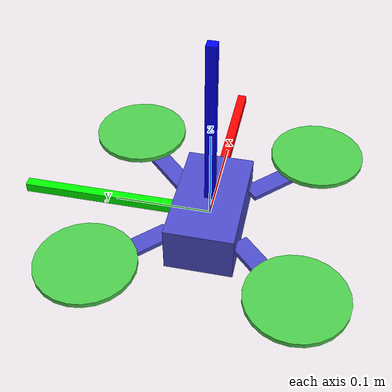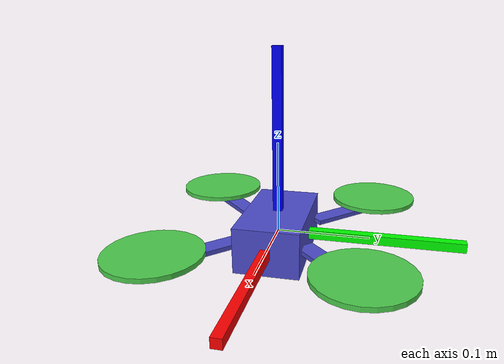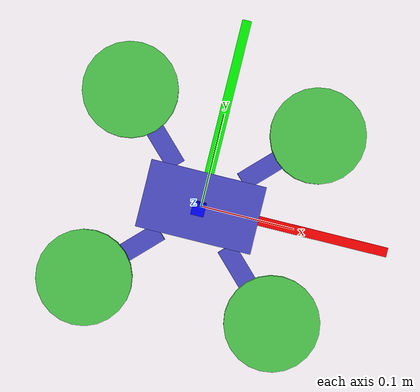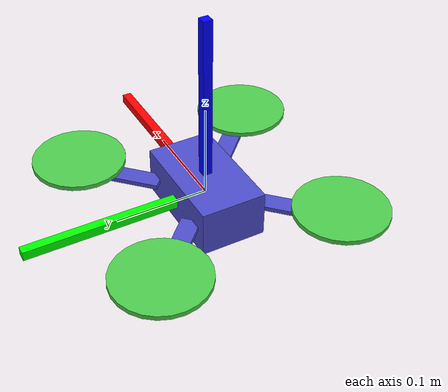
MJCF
<mujoco model="quadrotor0">
	<compiler inertiafromgeom="true" coordinate="local"/>
	<option	timestep="0.01" gravity="0 0 -9.81" density="1" viscosity="1e-5" />
	<worldbody>
		<body name="quadrotor" pos="0 0 0">
			<geom name="core" type="box" pos="0 0 0" quat = "1. 0. 0. 0" size="0.06 0.035 0.025"  rgba="0.3 0.3 0.8 1" mass = ".2"/>

			<geom name="a00" type="box" pos=".071 0.071 0.0" size="0.05 0.01 0.0025"  quat = ".924 0.0 0.0 0.383" rgba="0.3 0.3 0.8 1" mass = ".025"/>
			<geom name="a10" type="box" pos=".071 -0.071 0.0" size="0.05 0.01 0.0025"  quat = ".383 0.0 0.0 0.924" rgba="0.3 0.3 0.8 1" mass = ".025"/>
			<geom name="a20" type="box" pos="-0.071 -0.071 0.0" size="0.05 0.01 0.0025"  quat = "-.383 0.0 0.0 0.924" rgba="0.3 0.3 0.8 1" mass = ".025"/>
			<geom name="a30" type="box" pos="-.071 0.071 0.0" size="0.05 0.01 0.0025"  quat = ".924 0.0 0.0 -0.383" rgba="0.3 0.3 0.8 1" mass = ".025"/>

			<joint name="root" type="free" damping="0" armature="0" pos="0 0 0" />

			<!-- Actuator sites to attach actuators  -->
            <site name="thrust" type="box" pos="0 0 0"  size="0.06 0.035 0.025"  quat = "1.0 0.0 0.0 0." rgba="0.3 0.8 0.3 1"/>
			<site name="rateX" type="box" pos="0 0 0" quat = "1. 0. 0. 0."  size="0.06 0.035 0.025" rgba="0.3 0.8 0.3 1" />
			<site name="rateY" type="box" pos="0 0 0" quat = "1. 0. 0. 0."	size="0.06 0.035 0.025" rgba="0.3 0.8 0.3 1" />
			<site name="rateZ" type="box" pos="0 0 0" quat = "1. 0. 0. 0."  size="0.06 0.035 0.025" rgba="0.3 0.8 0.3 1" />

			<!-- Thruster geometries for collisions since site's are excluded from collision checking -->
            <geom name="thruster0" type="cylinder" pos=" 0.1  0.1  0.01" size="0.05 0.0025"  quat = "1.0 0.0 0.0 0." rgba="0.3 0.8 0.3 1" mass = ".025"/>
            <geom name="thruster1" type="cylinder" pos=" 0.1 -0.1  0.01" size="0.05 0.0025"  quat = "1.0 0.0 0.0 0." rgba="0.3 0.8 0.3 1" mass = ".025"/>
            <geom name="thruster2" type="cylinder" pos="-0.1 -0.1  0.01" size="0.05 0.0025"  quat = "1.0 0.0 0.0 0." rgba="0.3 0.8 0.3 1" mass = ".025"/>
            <geom name="thruster3" type="cylinder" pos="-0.1  0.1  0.01" size="0.05 0.0025"  quat = "1.0 0.0 0.0 0." rgba="0.3 0.8 0.3 1" mass = ".025"/>

            <!-- Visualization of the coordinate frame -->
			<site name="qcX" type="box" pos="0.1 0.0 0.0" size="0.1 0.005 0.005"  quat = " 1.000  0.0  0.0    0."     rgba="1 0 0 1" />
			<site name="qcY" type="box" pos="0.0 0.1 0.0" size="0.1 0.005 0.005"  quat = " 0.707  0.0  0.0    0.707"  rgba="0 1 0 1" />
			<site name="qcZ" type="box" pos="0.0 0.0 0.1" size="0.1 0.005 0.005"  quat = "-0.707  0.0  0.707  0."     rgba="0 0 1 1" />
		</body>
		<body name="target" pos="0 0 0">
			<geom name="target" conaffinity="0" contype="0" type="sphere" pos="0 0 0" quat = "1. 0. 0. 0" size="0.01"  rgba="1.0 0.0 0.0 1"/>
			<joint name="target" type="free" damping="0" armature="0" pos="0 0 0" />
		</body>
		<body name="init" pos="0 0 0">
			<geom name="init" conaffinity="0" contype="0" type="sphere" pos="0 0 0" quat = "1. 0. 0. 0" size="0.01"  rgba="1.0 0.0 0.0 1"/>
			<joint name="init" type="free" damping="0" armature="0" pos="0 0 0" />
		</body>
	</worldbody>
    <actuator>
		<motor ctrllimited="true" ctrlrange="0.0 4.0" gear="0  0. 1. 0. 0. 0." site="thrust"/>
		<velocity ctrllimited="true" ctrlrange="-1 1" gear="0. 0. 0. 1. 0. 0." kv="0.1" site="rateX"/>
		<velocity ctrllimited="true" ctrlrange="-1 1" gear="0. 0. 0. 0. 1. 0." kv="0.1" site="rateY"/>
		<velocity ctrllimited="true" ctrlrange="-1 1" gear="0. 0. 0. 0. 0. 1." kv="0.1" site="rateZ"/>
	</actuator>
</mujoco>
